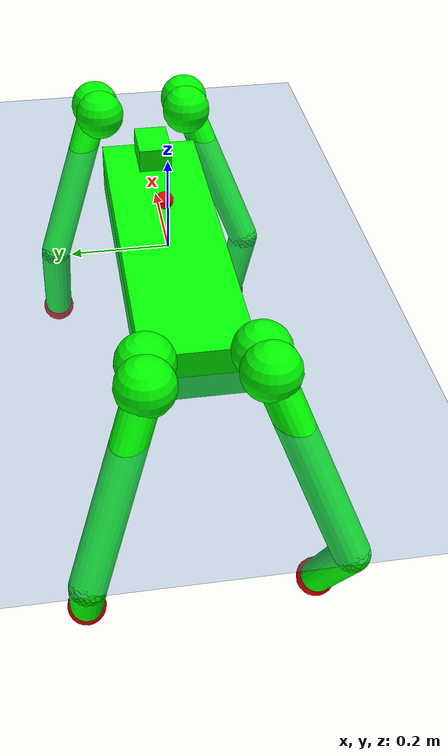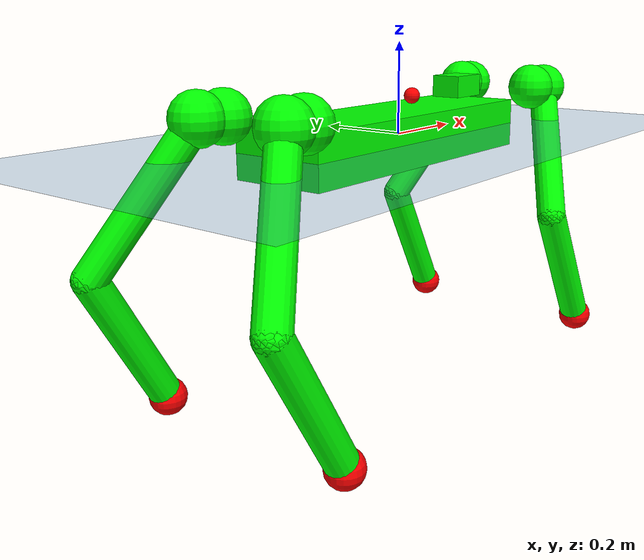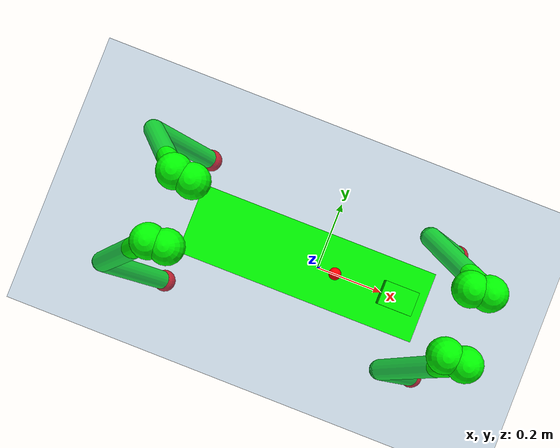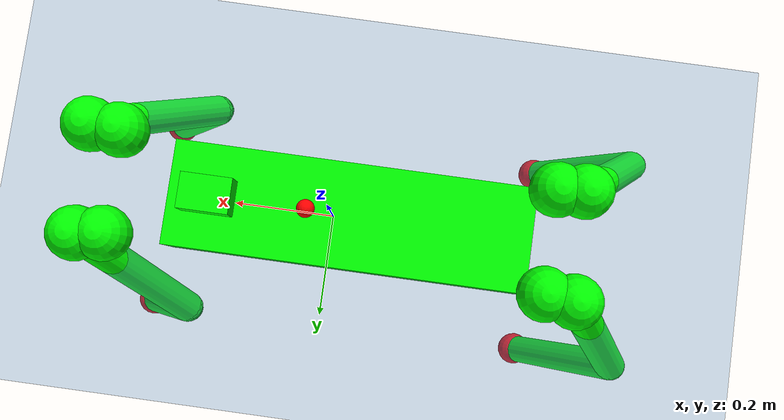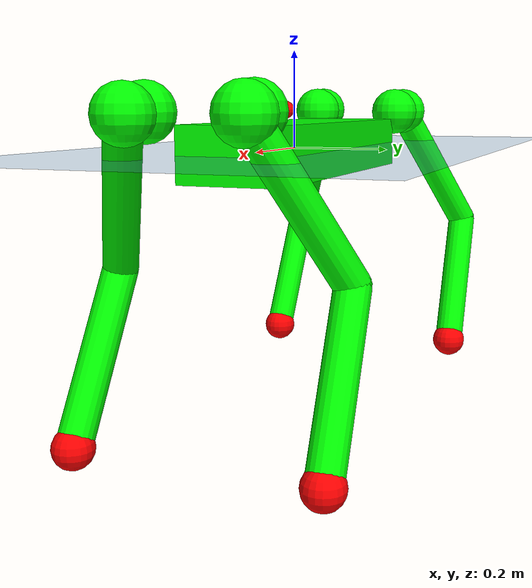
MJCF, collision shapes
<?xml version='1.0' encoding='utf-8'?>
<mujoco model="grallator_v43_from_urdf">
  <compiler angle="radian" autolimits="true" meshdir="meshes" />
  <visual>
    <headlight ambient="0.25 0.25 0.25" diffuse="0.45 0.45 0.45" specular="0.05 0.05 0.05" />
    <map fogstart="8" fogend="25" force="0.1" znear="0.01" />
    <rgba haze="0.10 0.15 0.20 1" />
  </visual>
  <option timestep="0.001" gravity="0 0 -9.81" integrator="RK4" solver="Newton" iterations="50" tolerance="1e-10" />
  <default>
    <joint damping="0.6" armature="0.01" limited="true" frictionloss="0.1" />
    <geom friction="1.0 0.03 0.003" condim="3" margin="0.001" />
    <motor ctrllimited="true" ctrlrange="-90 90" />
  </default>
  <asset>
    <mesh name="base_link" file="base_link.STL" />
    <mesh name="FRABAD" file="FRABAD.STL" />
    <mesh name="FRHIP" file="FRHIP.STL" />
    <mesh name="FRKNEE" file="FRKNEE.STL" />
    <mesh name="FRFoot" file="FRFoot.STL" />
    <mesh name="FLABAD" file="FLABAD.STL" />
    <mesh name="FLHIP" file="FLHIP.STL" />
    <mesh name="FLKNEE" file="FLKNEE.STL" />
    <mesh name="FLfoot" file="FLfoot.STL" />
    <mesh name="RRABAD" file="RRABAD.STL" />
    <mesh name="RRHIP" file="RRHIP.STL" />
    <mesh name="RRKNEE" file="RRKNEE.STL" />
    <mesh name="RRFoot" file="RRFoot.STL" />
    <mesh name="RLABAD" file="RLABAD.STL" />
    <mesh name="RLHIP" file="RLHIP.STL" />
    <mesh name="RLKNEE" file="RLKNEE.STL" />
    <mesh name="RLfoot" file="RLfoot.STL" />
    <texture name="grid" type="2d" builtin="checker" rgb1="0.18 0.18 0.18" rgb2="0.35 0.35 0.35" width="512" height="512" />
    <material name="grid_mat" texture="grid" texrepeat="8 8" reflectance="0.15" />
    <material name="floor_blue_mat" rgba="0.03 0.20 0.95 1" reflectance="0.15" />
    <texture name="blue_checker" type="2d" builtin="checker" rgb1="0.22 0.45 0.68" rgb2="0.55 0.78 0.95" width="512" height="512" />
    <material name="blue_checker_mat" texture="blue_checker" texrepeat="35 35" reflectance="0.12" />
    <texture name="bright_blue_checker" type="2d" builtin="checker" rgb1="0.16 0.33 0.52" rgb2="0.42 0.66 0.86" width="512" height="512" />
    <material name="bright_blue_checker_mat" texture="bright_blue_checker" texrepeat="45 45" reflectance="0.08" />
    <texture name="default_blue_checker" type="2d" builtin="checker" rgb1="0.18 0.36 0.56" rgb2="0.43 0.67 0.88" width="512" height="512" />
    <material name="default_blue_checker_mat" texture="default_blue_checker" texrepeat="38 38" reflectance="0.06" />
  </asset>
  <worldbody>
    <camera name="track" mode="trackcom" pos="1.8 -2.0 1.1" xyaxes="0.73 0.68 0 -0.28 0.30 0.91" />
    <geom name="floor" type="plane" size="12 12 0.05" material="default_blue_checker_mat" friction="1.5 0.05 0.005" condim="3" contype="1" conaffinity="1" />
    <body name="base_link">
      <freejoint name="base_freejoint" />
      <inertial pos="0.05 0 0.03" mass="12.000000" diaginertia="0.056 0.531 0.563" />
      <geom name="base_link_visual" type="mesh" mesh="base_link" contype="0" conaffinity="0" group="1" rgba="0.698039215686274 0.698039215686274 0.698039215686274 1" />
      <body name="FRABAD" pos="0.3925 -0.1032681058 0.07828528243">
        <inertial pos="0.0422658 0.0029172 -0.00194417" quat="0.707592 -0.00256001 0.00380236 0.706606" mass="2.068198" diaginertia="0.0058451364 0.004962876 0.0043981895" />
        <joint name="FR_collar_joint" type="hinge" axis="1 0 0" range="-0.79 0.79" limited="true" />
        <geom name="FRABAD_visual" type="mesh" mesh="FRABAD" contype="0" conaffinity="0" group="1" rgba="0.792156862745098 0.819607843137255 0.933333333333333 1" />
        <body name="FRHIP" pos="0.0972158663 -0.003731894169 -0.002544888361">
          <inertial pos="-0.0367727 -0.0746392 -0.0637936" quat="0.68223 0.187873 0.187794 0.681175" mass="3.028174" diaginertia="0.016592203 0.014462668 0.0023553611" />
          <joint name="FR_hip_joint" type="hinge" axis="0 -1 0" range="-1.68 1.68" limited="true" />
          <geom name="FRHIP_visual" type="mesh" mesh="FRHIP" contype="0" conaffinity="0" group="1" rgba="0.792156862745098 0.819607843137255 0.933333333333333 1" />
          <body name="FRKNEE" pos="-0.1739339798 -0.12525 -0.293664555">
            <inertial pos="0.0641115 -0.0078228 -0.0922608" quat="0.680378 -0.192307 -0.192304 0.680531" mass="1.752629" diaginertia="0.015809715 0.01557616 0.00039865176" />
            <joint name="FR_knee_joint" type="hinge" axis="0 1 0" range="-1.56 0" limited="true" />
            <geom name="FRKNEE_visual" type="mesh" mesh="FRKNEE" contype="0" conaffinity="0" group="1" rgba="0.698039215686274 0.698039215686274 0.698039215686274 1" />
            <body name="FRFoot" pos="0.16459 -0.00575 -0.29983">
              <inertial pos="0 0 0" mass="0.001000" diaginertia="0.000001 0.000001 0.000001" />
              <geom name="FRFoot_visual" type="mesh" mesh="FRFoot" contype="0" conaffinity="0" group="1" rgba="0.298039215686275 0.298039215686275 0.298039215686275 1" />
              <geom type="sphere" size="0.040" pos="0 0 0" priority="1" solimp="0.015 1 0.022" friction="1.3 0.03 0.01" rgba="1 0 0 0.45" contype="1" conaffinity="1" condim="6" margin="0.004" group="3" name="FRKNEE_foot_collision" />
            </body>
            <geom type="capsule" fromto="0 0 0 0.16459 -0.00575 -0.29983" size="0.034" friction="1.3 0.03 0.003" rgba="0 1 0 0" contype="1" conaffinity="1" condim="3" margin="0.004" group="3" name="FR_shank_collision" />
          </body>
          <geom type="sphere" size="0.055" pos="0 0 0" friction="1.3 0.03 0.003" rgba="0 1 0 0" contype="1" conaffinity="1" condim="3" margin="0.004" group="3" name="FRHIP_collision" />
          <geom type="capsule" fromto="0 0 0 -0.1739339798 -0.12525 -0.293664555" size="0.034" friction="1.3 0.03 0.003" rgba="0 1 0 0" contype="1" conaffinity="1" condim="3" margin="0.004" group="3" name="FR_thigh_collision" />
        </body>
        <geom type="sphere" size="0.055" pos="0.035 0 0" friction="1.3 0.03 0.003" rgba="0 1 0 0" contype="1" conaffinity="1" condim="3" margin="0.004" group="3" name="FRABAD_collision" />
      </body>
      <body name="FLABAD" pos="0.3925 0.1 0.08017212421">
        <inertial pos="0.0422658 -0.000227935 -0.00350336" quat="0.707196 0.000524945 0.000413495 0.707017" mass="2.088075" diaginertia="0.0058788153 0.0050105737 0.0044629583" />
        <joint name="FL_collar_joint" type="hinge" axis="1 0 0" range="-0.79 0.79" limited="true" />
        <geom name="FLABAD_visual" type="mesh" mesh="FLABAD" contype="0" conaffinity="0" group="1" rgba="0.792156862745098 0.819607843137255 0.933333333333333 1" />
        <body name="FLHIP" pos="0.08987327421 0.007 -0.002730828037">
          <inertial pos="-0.0337775 0.0725643 -0.0456768" quat="0.680631 0.190309 0.189859 0.681526" mass="2.998190" diaginertia="0.017219002 0.015004134 0.0024472571" />
          <joint name="FL_hip_joint" type="hinge" axis="0 1 0" range="-1.68 1.68" limited="true" />
          <geom name="FLHIP_visual" type="mesh" mesh="FLHIP" contype="0" conaffinity="0" group="1" rgba="0.698039215686274 0.698039215686274 0.698039215686274 1" />
          <body name="FLKNEE" pos="-0.1665913877 0.12525 -0.2953654571">
            <inertial pos="0.0641159 0.00735397 -0.0922189" quat="0.680378 -0.192307 -0.192304 0.680531" mass="1.762735" diaginertia="0.015883495 0.015648787 0.00040053036" />
            <joint name="FL_knee_joint" type="hinge" axis="0 -1 0" range="0 1.56" limited="true" />
            <geom name="FLKNEE_visual" type="mesh" mesh="FLKNEE" contype="0" conaffinity="0" group="1" rgba="0.698039215686274 0.698039215686274 0.698039215686274 1" />
            <body name="FLfoot" pos="0.16459 0.00575 -0.29983">
              <inertial pos="0 0 0" mass="0.001000" diaginertia="0.000001 0.000001 0.000001" />
              <geom name="FLfoot_visual" type="mesh" mesh="FLfoot" contype="0" conaffinity="0" group="1" rgba="0.298039215686275 0.298039215686275 0.298039215686275 1" />
              <geom type="sphere" size="0.040" pos="0 0 0" priority="1" solimp="0.015 1 0.022" friction="1.3 0.03 0.01" rgba="1 0 0 0.45" contype="1" conaffinity="1" condim="6" margin="0.004" group="3" name="FLKNEE_foot_collision" />
            </body>
            <geom type="capsule" fromto="0 0 0 0.16459 0.00575 -0.29983" size="0.034" friction="1.3 0.03 0.003" rgba="0 1 0 0" contype="1" conaffinity="1" condim="3" margin="0.004" group="3" name="FL_shank_collision" />
          </body>
          <geom type="sphere" size="0.055" pos="0 0 0" friction="1.3 0.03 0.003" rgba="0 1 0 0" contype="1" conaffinity="1" condim="3" margin="0.004" group="3" name="FLHIP_collision" />
          <geom type="capsule" fromto="0 0 0 -0.1665913877 0.12525 -0.2953654571" size="0.034" friction="1.3 0.03 0.003" rgba="0 1 0 0" contype="1" conaffinity="1" condim="3" margin="0.004" group="3" name="FL_thigh_collision" />
        </body>
        <geom type="sphere" size="0.055" pos="0.035 0 0" friction="1.3 0.03 0.003" rgba="0 1 0 0" contype="1" conaffinity="1" condim="3" margin="0.004" group="3" name="FLABAD_collision" />
      </body>
      <body name="RRABAD" pos="-0.3925 -0.1032681058 0.07451159887">
        <inertial pos="-0.0422658 0.0029172 0.00194417" quat="0.706606 0.00380236 -0.00256001 0.707592" mass="2.067944" diaginertia="0.0058444196 0.0049622674 0.0043976502" />
        <joint name="BR_collar_joint" type="hinge" axis="-1 0 0" range="-0.79 0.79" limited="true" />
        <geom name="RRABAD_visual" type="mesh" mesh="RRABAD" contype="0" conaffinity="0" group="1" rgba="0.792156862745098 0.819607843137255 0.933333333333333 1" />
        <body name="RRHIP" pos="-0.0897841337 -0.003731894169 0.001228795201">
          <inertial pos="-0.0367528 -0.0746596 -0.0637499" quat="0.682238 0.18787 0.187796 0.681168" mass="3.028219" diaginertia="0.016585228 0.014456513 0.0023543832" />
          <joint name="BR_hip_joint" type="hinge" axis="0 -1 0" range="-1.68 1.68" limited="true" />
          <geom name="RRHIP_visual" type="mesh" mesh="RRHIP" contype="0" conaffinity="0" group="1" rgba="0.792156862745098 0.819607843137255 0.933333333333333 1" />
          <body name="RRKNEE" pos="-0.1739339798 -0.12525 -0.293664555">
            <inertial pos="0.0641159 -0.00782065 -0.0922189" quat="0.680378 -0.192307 -0.192304 0.680531" mass="1.752837" diaginertia="0.015794356 0.015560966 0.00039828256" />
            <joint name="BR_knee_joint" type="hinge" axis="0 1 0" range="-1.56 0" limited="true" />
            <geom name="RRKNEE_visual" type="mesh" mesh="RRKNEE" contype="0" conaffinity="0" group="1" rgba="0.698039215686274 0.698039215686274 0.698039215686274 1" />
            <body name="RRFoot" pos="0.16459 -0.00575 -0.29983">
              <inertial pos="0 0 0" mass="0.001000" diaginertia="0.000001 0.000001 0.000001" />
              <geom name="RRFoot_visual" type="mesh" mesh="RRFoot" contype="0" conaffinity="0" group="1" rgba="0.298039215686275 0.298039215686275 0.298039215686275 1" />
              <geom type="sphere" size="0.040" pos="0 0 0" priority="1" solimp="0.015 1 0.022" friction="1.3 0.03 0.01" rgba="1 0 0 0.45" contype="1" conaffinity="1" condim="6" margin="0.004" group="3" name="RRKNEE_foot_collision" />
            </body>
            <geom type="capsule" fromto="0 0 0 0.16459 -0.00575 -0.29983" size="0.034" friction="1.3 0.03 0.003" rgba="0 1 0 0" contype="1" conaffinity="1" condim="3" margin="0.004" group="3" name="RR_shank_collision" />
          </body>
          <geom type="sphere" size="0.055" pos="0 0 0" friction="1.3 0.03 0.003" rgba="0 1 0 0" contype="1" conaffinity="1" condim="3" margin="0.004" group="3" name="RRHIP_collision" />
          <geom type="capsule" fromto="0 0 0 -0.1739339798 -0.12525 -0.293664555" size="0.034" friction="1.3 0.03 0.003" rgba="0 1 0 0" contype="1" conaffinity="1" condim="3" margin="0.004" group="3" name="RR_thigh_collision" />
        </body>
        <geom type="sphere" size="0.055" pos="-0.035 0 0" friction="1.3 0.03 0.003" rgba="0 1 0 0" contype="1" conaffinity="1" condim="3" margin="0.004" group="3" name="RRABAD_collision" />
      </body>
      <body name="RLABAD" pos="-0.3925 0.1 0.07262475709">
        <inertial pos="-0.0422658 -0.000227935 0.00350336" quat="0.707017 0.000413497 0.00052495 0.707196" mass="2.068009" diaginertia="0.0058223222 0.004962424 0.0044200709" />
        <joint name="BL_collar_joint" type="hinge" axis="-1 0 0" range="-0.79 0.79" limited="true" />
        <geom name="RLABAD_visual" type="mesh" mesh="RLABAD" contype="0" conaffinity="0" group="1" rgba="0.792156862745098 0.819607843137255 0.933333333333333 1" />
        <body name="RLHIP" pos="-0.0938380476 0.007 0.0007033964032">
          <inertial pos="-0.0406471 0.0746578 -0.0578909" quat="0.680657 0.190302 0.189867 0.6815" mass="3.028122" diaginertia="0.016587999 0.014431562 0.0023810791" />
          <joint name="BL_hip_joint" type="hinge" axis="0 1 0" range="-1.68 1.68" limited="true" />
          <geom name="RLHIP_visual" type="mesh" mesh="RLHIP" contype="0" conaffinity="0" group="1" rgba="0.792156862745098 0.819607843137255 0.933333333333333 1" />
          <body name="RLKNEE" pos="-0.1717504543 0.12525 -0.2908740339">
            <inertial pos="0.0641159 0.00735397 -0.0922189" quat="0.680378 -0.192307 -0.192304 0.680531" mass="1.752869" diaginertia="0.015794645 0.015561251 0.00039828986" />
            <joint name="BL_knee_joint" type="hinge" axis="0 -1 0" range="0 1.56" limited="true" />
            <geom name="RLKNEE_visual" type="mesh" mesh="RLKNEE" contype="0" conaffinity="0" group="1" rgba="0.529411764705882 0.549019607843137 0.549019607843137 1" />
            <body name="RLfoot" pos="0.16459 0.00575 -0.29983">
              <inertial pos="0 0 0" mass="0.001000" diaginertia="0.000001 0.000001 0.000001" />
              <geom name="RLfoot_visual" type="mesh" mesh="RLfoot" contype="0" conaffinity="0" group="1" rgba="0.298039215686275 0.298039215686275 0.298039215686275 1" />
              <geom type="sphere" size="0.040" pos="0 0 0" priority="1" solimp="0.015 1 0.022" friction="1.3 0.03 0.01" rgba="1 0 0 0.45" contype="1" conaffinity="1" condim="6" margin="0.004" group="3" name="RLKNEE_foot_collision" />
            </body>
            <geom type="capsule" fromto="0 0 0 0.16459 0.00575 -0.29983" size="0.034" friction="1.3 0.03 0.003" rgba="0 1 0 0" contype="1" conaffinity="1" condim="3" margin="0.004" group="3" name="RL_shank_collision" />
          </body>
          <geom type="sphere" size="0.055" pos="0 0 0" friction="1.3 0.03 0.003" rgba="0 1 0 0" contype="1" conaffinity="1" condim="3" margin="0.004" group="3" name="RLHIP_collision" />
          <geom type="capsule" fromto="0 0 0 -0.1717504543 0.12525 -0.2908740339" size="0.034" friction="1.3 0.03 0.003" rgba="0 1 0 0" contype="1" conaffinity="1" condim="3" margin="0.004" group="3" name="RL_thigh_collision" />
        </body>
        <geom type="sphere" size="0.055" pos="-0.035 0 0" friction="1.3 0.03 0.003" rgba="0 1 0 0" contype="1" conaffinity="1" condim="3" margin="0.004" group="3" name="RLABAD_collision" />
      </body>
      <geom type="box" size="0.36 0.105 0.055" pos="-0.035 0 0" friction="1.3 0.03 0.003" rgba="0 1 0 0" contype="1" conaffinity="1" condim="3" margin="0.004" group="3" name="base_collision" />
      <geom type="box" size="0.050 0.035 0.025" pos="0.240 0.000 0.090" friction="1.3 0.03 0.003" rgba="0 1 0 0" contype="1" conaffinity="1" condim="3" margin="0.004" group="3" name="top_sensor_collision" />
      <site name="xsens_mti630_site" pos="0.05 0 0.08" size="0.018" rgba="1 0 0 1" />
    </body>
    <light name="main_light" pos="0 0 4" dir="0 0 -1" directional="true" diffuse="0.55 0.55 0.55" ambient="0.25 0.25 0.25" specular="0.08 0.08 0.08" />
  </worldbody>
  <contact>
    <exclude name="adjacent_exclude_00" body1="base_link" body2="FRABAD" />
    <exclude name="adjacent_exclude_01" body1="FRABAD" body2="FRHIP" />
    <exclude name="adjacent_exclude_02" body1="FRHIP" body2="FRKNEE" />
    <exclude name="adjacent_exclude_03" body1="FRKNEE" body2="FRFoot" />
    <exclude name="adjacent_exclude_04" body1="base_link" body2="FLABAD" />
    <exclude name="adjacent_exclude_05" body1="FLABAD" body2="FLHIP" />
    <exclude name="adjacent_exclude_06" body1="FLHIP" body2="FLKNEE" />
    <exclude name="adjacent_exclude_07" body1="FLKNEE" body2="FLfoot" />
    <exclude name="adjacent_exclude_08" body1="base_link" body2="RRABAD" />
    <exclude name="adjacent_exclude_09" body1="RRABAD" body2="RRHIP" />
    <exclude name="adjacent_exclude_10" body1="RRHIP" body2="RRKNEE" />
    <exclude name="adjacent_exclude_11" body1="RRKNEE" body2="RRFoot" />
    <exclude name="adjacent_exclude_12" body1="base_link" body2="RLABAD" />
    <exclude name="adjacent_exclude_13" body1="RLABAD" body2="RLHIP" />
    <exclude name="adjacent_exclude_14" body1="RLHIP" body2="RLKNEE" />
    <exclude name="adjacent_exclude_15" body1="RLKNEE" body2="RLfoot" />
  </contact>
  <actuator>
    <motor name="FR_collar_joint" joint="FR_collar_joint" gear="1" ctrllimited="true" ctrlrange="-90 90" />
    <motor name="FR_hip_joint" joint="FR_hip_joint" gear="1" ctrllimited="true" ctrlrange="-90 90" />
    <motor name="FR_knee_joint" joint="FR_knee_joint" gear="1" ctrllimited="true" ctrlrange="-90 90" />
    <motor name="FL_collar_joint" joint="FL_collar_joint" gear="1" ctrllimited="true" ctrlrange="-90 90" />
    <motor name="FL_hip_joint" joint="FL_hip_joint" gear="1" ctrllimited="true" ctrlrange="-90 90" />
    <motor name="FL_knee_joint" joint="FL_knee_joint" gear="1" ctrllimited="true" ctrlrange="-90 90" />
    <motor name="BR_collar_joint" joint="BR_collar_joint" gear="1" ctrllimited="true" ctrlrange="-90 90" />
    <motor name="BR_hip_joint" joint="BR_hip_joint" gear="1" ctrllimited="true" ctrlrange="-90 90" />
    <motor name="BR_knee_joint" joint="BR_knee_joint" gear="1" ctrllimited="true" ctrlrange="-90 90" />
    <motor name="BL_collar_joint" joint="BL_collar_joint" gear="1" ctrllimited="true" ctrlrange="-90 90" />
    <motor name="BL_hip_joint" joint="BL_hip_joint" gear="1" ctrllimited="true" ctrlrange="-90 90" />
    <motor name="BL_knee_joint" joint="BL_knee_joint" gear="1" ctrllimited="true" ctrlrange="-90 90" />
  </actuator>
  <sensor>
    <jointpos joint="FL_collar_joint" name="abduction_front_left_pos" />
    <jointpos joint="FL_hip_joint" name="hip_front_left_pos" />
    <jointpos joint="FL_knee_joint" name="knee_front_left_pos" />
    <jointpos joint="BL_collar_joint" name="abduction_hind_left_pos" />
    <jointpos joint="BL_hip_joint" name="hip_hind_left_pos" />
    <jointpos joint="BL_knee_joint" name="knee_hind_left_pos" />
    <jointpos joint="FR_collar_joint" name="abduction_front_right_pos" />
    <jointpos joint="FR_hip_joint" name="hip_front_right_pos" />
    <jointpos joint="FR_knee_joint" name="knee_front_right_pos" />
    <jointpos joint="BR_collar_joint" name="abduction_hind_right_pos" />
    <jointpos joint="BR_hip_joint" name="hip_hind_right_pos" />
    <jointpos joint="BR_knee_joint" name="knee_hind_right_pos" />
    <jointvel joint="FL_collar_joint" name="abduction_front_left_vel" />
    <jointvel joint="FL_hip_joint" name="hip_front_left_vel" />
    <jointvel joint="FL_knee_joint" name="knee_front_left_vel" />
    <jointvel joint="BL_collar_joint" name="abduction_hind_left_vel" />
    <jointvel joint="BL_hip_joint" name="hip_hind_left_vel" />
    <jointvel joint="BL_knee_joint" name="knee_hind_left_vel" />
    <jointvel joint="FR_collar_joint" name="abduction_front_right_vel" />
    <jointvel joint="FR_hip_joint" name="hip_front_right_vel" />
    <jointvel joint="FR_knee_joint" name="knee_front_right_vel" />
    <jointvel joint="BR_collar_joint" name="abduction_hind_right_vel" />
    <jointvel joint="BR_hip_joint" name="hip_hind_right_vel" />
    <jointvel joint="BR_knee_joint" name="knee_hind_right_vel" />
    <gyro site="xsens_mti630_site" name="xsens_mti630_gyro" />
    <accelerometer site="xsens_mti630_site" name="xsens_mti630_accelerometer" />
    <framequat objtype="site" objname="xsens_mti630_site" name="xsens_mti630_orientation" />
    <framepos objtype="site" objname="xsens_mti630_site" name="xsens_mti630_global_position" />
    <framelinvel objtype="site" objname="xsens_mti630_site" name="xsens_mti630_global_linvel" />
    <frameangvel objtype="site" objname="xsens_mti630_site" name="xsens_mti630_global_angvel" />
  </sensor>
  <keyframe>
    <key name="STANDBY" qpos="0.000000 0.000000 0.199411 1.000000 0.000000 0.000000 0.000000 0.000000 -0.690000 -1.400000 0.000000 0.690000 1.400000 0.000000 -0.690000 -1.400000 0.000000 0.690000 1.400000" ctrl="0 0 0 0 0 0 0 0 0 0 0 0" />
  </keyframe>
</mujoco>
